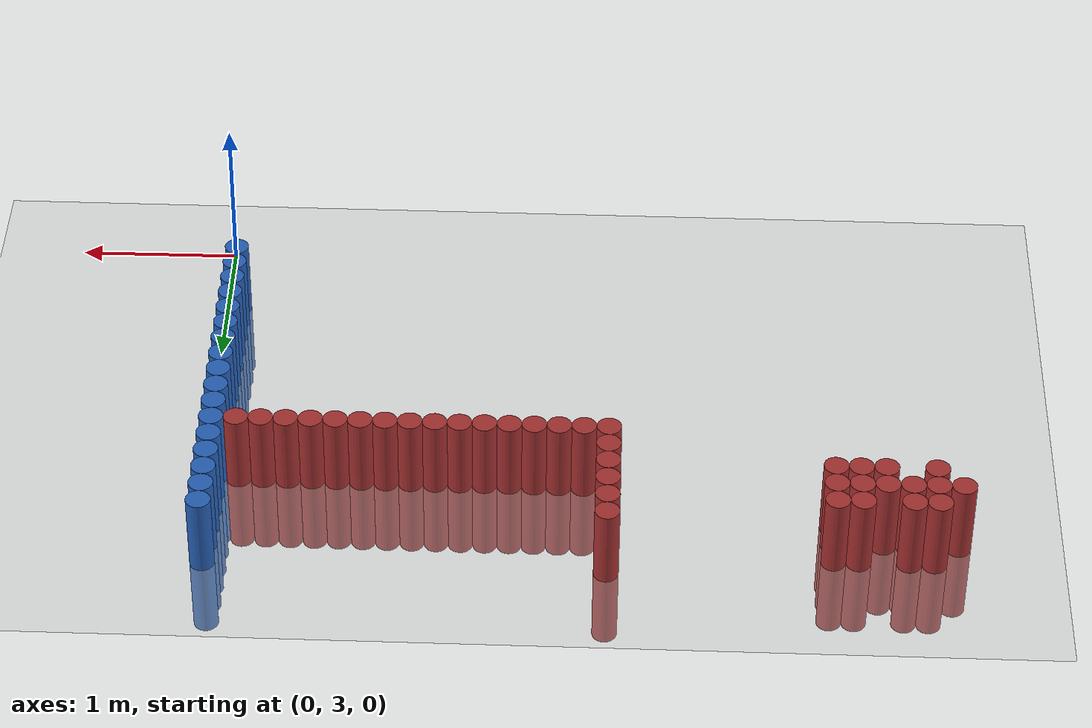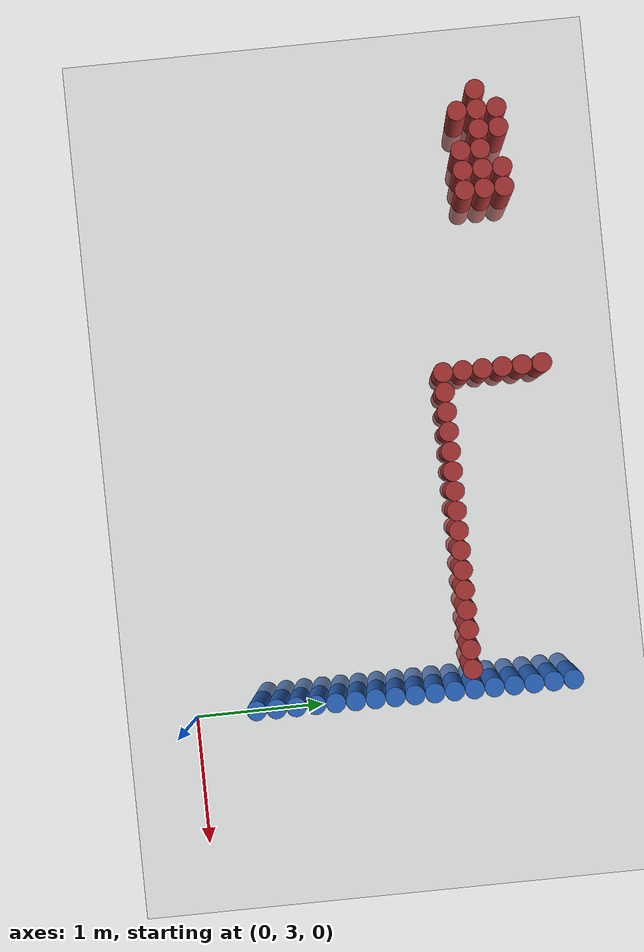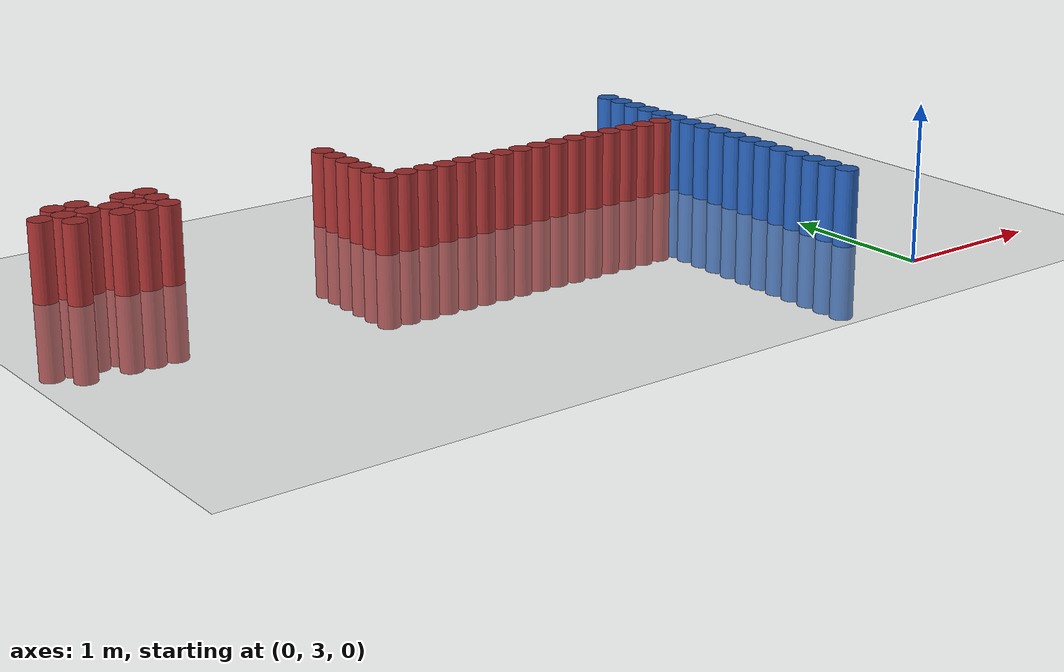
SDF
<sdf version="1.6">
 <world name="default">
  <model name="ground_plane">
   <static>1</static>
   <link name="link">
    <collision name="collision">
     <geometry><plane><normal>0 0 1</normal><size>100 100</size></plane></geometry>
     <surface><friction><ode><mu>100</mu><mu2>50</mu2></ode></friction></surface>
    </collision>
    <visual name="visual">
     <cast_shadows>0</cast_shadows>
     <geometry><plane><normal>0 0 1</normal><size>100 100</size></plane></geometry>
     <material>
      <script><uri>file://media/materials/scripts/gazebo.material</uri><name>Gazebo/Grey</name></script>
     </material>
    </visual>
   </link>
  </model>
  <model name="unit_cylinder_103">
   <static>1</static>
   <pose>-0.075000 3.525000 0.000000 0.000000 0.000000 0.000000</pose>
   <link name="link">
    <inertial>
     <mass>1</mass>
     <inertia><ixx>0.145833</ixx><ixy>0</ixy><ixz>0</ixz><iyy>0.145833</iyy><iyz>0</iyz><izz>0.125</izz></inertia>
    </inertial>
    <collision name="collision">
     <geometry><cylinder><radius>0.075000</radius><length>1</length></cylinder></geometry>
    </collision>
    <visual name="visual">
     <geometry><cylinder><radius>0.075000</radius><length>1</length></cylinder></geometry>
     <material>
      <ambient>0.152000 0.379000 0.720000 1</ambient>
      <diffuse>0.152000 0.379000 0.720000 1</diffuse>
     </material>
     <material>
      <script><name>Gazebo/Grey</name><uri>file://media/materials/scripts/gazebo.material</uri></script>
     </material>
    </visual>
   </link>
  </model>
  <model name="unit_cylinder_105">
   <static>1</static>
   <pose>-0.075000 3.675000 0.000000 0.000000 0.000000 0.000000</pose>
   <link name="link">
    <inertial>
     <mass>1</mass>
     <inertia><ixx>0.145833</ixx><ixy>0</ixy><ixz>0</ixz><iyy>0.145833</iyy><iyz>0</iyz><izz>0.125</izz></inertia>
    </inertial>
    <collision name="collision">
     <geometry><cylinder><radius>0.075000</radius><length>1</length></cylinder></geometry>
    </collision>
    <visual name="visual">
     <geometry><cylinder><radius>0.075000</radius><length>1</length></cylinder></geometry>
     <material>
      <ambient>0.152000 0.379000 0.720000 1</ambient>
      <diffuse>0.152000 0.379000 0.720000 1</diffuse>
     </material>
     <material>
      <script><name>Gazebo/Grey</name><uri>file://media/materials/scripts/gazebo.material</uri></script>
     </material>
    </visual>
   </link>
  </model>
  <model name="unit_cylinder_107">
   <static>1</static>
   <pose>-0.075000 3.825000 0.000000 0.000000 0.000000 0.000000</pose>
   <link name="link">
    <inertial>
     <mass>1</mass>
     <inertia><ixx>0.145833</ixx><ixy>0</ixy><ixz>0</ixz><iyy>0.145833</iyy><iyz>0</iyz><izz>0.125</izz></inertia>
    </inertial>
    <collision name="collision">
     <geometry><cylinder><radius>0.075000</radius><length>1</length></cylinder></geometry>
    </collision>
    <visual name="visual">
     <geometry><cylinder><radius>0.075000</radius><length>1</length></cylinder></geometry>
     <material>
      <ambient>0.152000 0.379000 0.720000 1</ambient>
      <diffuse>0.152000 0.379000 0.720000 1</diffuse>
     </material>
     <material>
      <script><name>Gazebo/Grey</name><uri>file://media/materials/scripts/gazebo.material</uri></script>
     </material>
    </visual>
   </link>
  </model>
  <model name="unit_cylinder_109">
   <static>1</static>
   <pose>-0.075000 3.975000 0.000000 0.000000 0.000000 0.000000</pose>
   <link name="link">
    <inertial>
     <mass>1</mass>
     <inertia><ixx>0.145833</ixx><ixy>0</ixy><ixz>0</ixz><iyy>0.145833</iyy><iyz>0</iyz><izz>0.125</izz></inertia>
    </inertial>
    <collision name="collision">
     <geometry><cylinder><radius>0.075000</radius><length>1</length></cylinder></geometry>
    </collision>
    <visual name="visual">
     <geometry><cylinder><radius>0.075000</radius><length>1</length></cylinder></geometry>
     <material>
      <ambient>0.152000 0.379000 0.720000 1</ambient>
      <diffuse>0.152000 0.379000 0.720000 1</diffuse>
     </material>
     <material>
      <script><name>Gazebo/Grey</name><uri>file://media/materials/scripts/gazebo.material</uri></script>
     </material>
    </visual>
   </link>
  </model>
  <model name="unit_cylinder_111">
   <static>1</static>
   <pose>-0.075000 4.125000 0.000000 0.000000 0.000000 0.000000</pose>
   <link name="link">
    <inertial>
     <mass>1</mass>
     <inertia><ixx>0.145833</ixx><ixy>0</ixy><ixz>0</ixz><iyy>0.145833</iyy><iyz>0</iyz><izz>0.125</izz></inertia>
    </inertial>
    <collision name="collision">
     <geometry><cylinder><radius>0.075000</radius><length>1</length></cylinder></geometry>
    </collision>
    <visual name="visual">
     <geometry><cylinder><radius>0.075000</radius><length>1</length></cylinder></geometry>
     <material>
      <ambient>0.152000 0.379000 0.720000 1</ambient>
      <diffuse>0.152000 0.379000 0.720000 1</diffuse>
     </material>
     <material>
      <script><name>Gazebo/Grey</name><uri>file://media/materials/scripts/gazebo.material</uri></script>
     </material>
    </visual>
   </link>
  </model>
  <model name="unit_cylinder_113">
   <static>1</static>
   <pose>-0.075000 4.275000 0.000000 0.000000 0.000000 0.000000</pose>
   <link name="link">
    <inertial>
     <mass>1</mass>
     <inertia><ixx>0.145833</ixx><ixy>0</ixy><ixz>0</ixz><iyy>0.145833</iyy><iyz>0</iyz><izz>0.125</izz></inertia>
    </inertial>
    <collision name="collision">
     <geometry><cylinder><radius>0.075000</radius><length>1</length></cylinder></geometry>
    </collision>
    <visual name="visual">
     <geometry><cylinder><radius>0.075000</radius><length>1</length></cylinder></geometry>
     <material>
      <ambient>0.152000 0.379000 0.720000 1</ambient>
      <diffuse>0.152000 0.379000 0.720000 1</diffuse>
     </material>
     <material>
      <script><name>Gazebo/Grey</name><uri>file://media/materials/scripts/gazebo.material</uri></script>
     </material>
    </visual>
   </link>
  </model>
  <model name="unit_cylinder_115">
   <static>1</static>
   <pose>-0.075000 4.425000 0.000000 0.000000 0.000000 0.000000</pose>
   <link name="link">
    <inertial>
     <mass>1</mass>
     <inertia><ixx>0.145833</ixx><ixy>0</ixy><ixz>0</ixz><iyy>0.145833</iyy><iyz>0</iyz><izz>0.125</izz></inertia>
    </inertial>
    <collision name="collision">
     <geometry><cylinder><radius>0.075000</radius><length>1</length></cylinder></geometry>
    </collision>
    <visual name="visual">
     <geometry><cylinder><radius>0.075000</radius><length>1</length></cylinder></geometry>
     <material>
      <ambient>0.152000 0.379000 0.720000 1</ambient>
      <diffuse>0.152000 0.379000 0.720000 1</diffuse>
     </material>
     <material>
      <script><name>Gazebo/Grey</name><uri>file://media/materials/scripts/gazebo.material</uri></script>
     </material>
    </visual>
   </link>
  </model>
  <model name="unit_cylinder_117">
   <static>1</static>
   <pose>-0.075000 4.575000 0.000000 0.000000 0.000000 0.000000</pose>
   <link name="link">
    <inertial>
     <mass>1</mass>
     <inertia><ixx>0.145833</ixx><ixy>0</ixy><ixz>0</ixz><iyy>0.145833</iyy><iyz>0</iyz><izz>0.125</izz></inertia>
    </inertial>
    <collision name="collision">
     <geometry><cylinder><radius>0.075000</radius><length>1</length></cylinder></geometry>
    </collision>
    <visual name="visual">
     <geometry><cylinder><radius>0.075000</radius><length>1</length></cylinder></geometry>
     <material>
      <ambient>0.152000 0.379000 0.720000 1</ambient>
      <diffuse>0.152000 0.379000 0.720000 1</diffuse>
     </material>
     <material>
      <script><name>Gazebo/Grey</name><uri>file://media/materials/scripts/gazebo.material</uri></script>
     </material>
    </visual>
   </link>
  </model>
  <model name="unit_cylinder_119">
   <static>1</static>
   <pose>-0.075000 4.725000 0.000000 0.000000 0.000000 0.000000</pose>
   <link name="link">
    <inertial>
     <mass>1</mass>
     <inertia><ixx>0.145833</ixx><ixy>0</ixy><ixz>0</ixz><iyy>0.145833</iyy><iyz>0</iyz><izz>0.125</izz></inertia>
    </inertial>
    <collision name="collision">
     <geometry><cylinder><radius>0.075000</radius><length>1</length></cylinder></geometry>
    </collision>
    <visual name="visual">
     <geometry><cylinder><radius>0.075000</radius><length>1</length></cylinder></geometry>
     <material>
      <ambient>0.152000 0.379000 0.720000 1</ambient>
      <diffuse>0.152000 0.379000 0.720000 1</diffuse>
     </material>
     <material>
      <script><name>Gazebo/Grey</name><uri>file://media/materials/scripts/gazebo.material</uri></script>
     </material>
    </visual>
   </link>
  </model>
  <model name="unit_cylinder_121">
   <static>1</static>
   <pose>-0.075000 4.875000 0.000000 0.000000 0.000000 0.000000</pose>
   <link name="link">
    <inertial>
     <mass>1</mass>
     <inertia><ixx>0.145833</ixx><ixy>0</ixy><ixz>0</ixz><iyy>0.145833</iyy><iyz>0</iyz><izz>0.125</izz></inertia>
    </inertial>
    <collision name="collision">
     <geometry><cylinder><radius>0.075000</radius><length>1</length></cylinder></geometry>
    </collision>
    <visual name="visual">
     <geometry><cylinder><radius>0.075000</radius><length>1</length></cylinder></geometry>
     <material>
      <ambient>0.152000 0.379000 0.720000 1</ambient>
      <diffuse>0.152000 0.379000 0.720000 1</diffuse>
     </material>
     <material>
      <script><name>Gazebo/Grey</name><uri>file://media/materials/scripts/gazebo.material</uri></script>
     </material>
    </visual>
   </link>
  </model>
  <model name="unit_cylinder_123">
   <static>1</static>
   <pose>-0.075000 5.025000 0.000000 0.000000 0.000000 0.000000</pose>
   <link name="link">
    <inertial>
     <mass>1</mass>
     <inertia><ixx>0.145833</ixx><ixy>0</ixy><ixz>0</ixz><iyy>0.145833</iyy><iyz>0</iyz><izz>0.125</izz></inertia>
    </inertial>
    <collision name="collision">
     <geometry><cylinder><radius>0.075000</radius><length>1</length></cylinder></geometry>
    </collision>
    <visual name="visual">
     <geometry><cylinder><radius>0.075000</radius><length>1</length></cylinder></geometry>
     <material>
      <ambient>0.152000 0.379000 0.720000 1</ambient>
      <diffuse>0.152000 0.379000 0.720000 1</diffuse>
     </material>
     <material>
      <script><name>Gazebo/Grey</name><uri>file://media/materials/scripts/gazebo.material</uri></script>
     </material>
    </visual>
   </link>
  </model>
  <model name="unit_cylinder_298">
   <static>1</static>
   <pose>-4.575000 5.625000 0.000000 0.000000 0.000000 0.000000</pose>
   <link name="link">
    <inertial>
     <mass>1</mass>
     <inertia><ixx>0.145833</ixx><ixy>0</ixy><ixz>0</ixz><iyy>0.145833</iyy><iyz>0</iyz><izz>0.125</izz></inertia>
    </inertial>
    <collision name="collision">
     <geometry><cylinder><radius>0.075000</radius><length>1</length></cylinder></geometry>
    </collision>
    <visual name="visual">
     <geometry><cylinder><radius>0.075000</radius><length>1</length></cylinder></geometry>
     <material>
      <ambient>0.648000 0.192000 0.192000 1</ambient>
      <diffuse>0.648000 0.192000 0.192000 1</diffuse>
     </material>
     <material>
      <script><name>Gazebo/Grey</name><uri>file://media/materials/scripts/gazebo.material</uri></script>
     </material>
    </visual>
   </link>
  </model>
  <model name="unit_cylinder_299">
   <static>1</static>
   <pose>-4.425000 5.475000 0.000000 0.000000 0.000000 0.000000</pose>
   <link name="link">
    <inertial>
     <mass>1</mass>
     <inertia><ixx>0.145833</ixx><ixy>0</ixy><ixz>0</ixz><iyy>0.145833</iyy><iyz>0</iyz><izz>0.125</izz></inertia>
    </inertial>
    <collision name="collision">
     <geometry><cylinder><radius>0.075000</radius><length>1</length></cylinder></geometry>
    </collision>
    <visual name="visual">
     <geometry><cylinder><radius>0.075000</radius><length>1</length></cylinder></geometry>
     <material>
      <ambient>0.648000 0.192000 0.192000 1</ambient>
      <diffuse>0.648000 0.192000 0.192000 1</diffuse>
     </material>
     <material>
      <script><name>Gazebo/Grey</name><uri>file://media/materials/scripts/gazebo.material</uri></script>
     </material>
    </visual>
   </link>
  </model>
  <model name="unit_cylinder_300">
   <static>1</static>
   <pose>-4.425000 5.625000 0.000000 0.000000 0.000000 0.000000</pose>
   <link name="link">
    <inertial>
     <mass>1</mass>
     <inertia><ixx>0.145833</ixx><ixy>0</ixy><ixz>0</ixz><iyy>0.145833</iyy><iyz>0</iyz><izz>0.125</izz></inertia>
    </inertial>
    <collision name="collision">
     <geometry><cylinder><radius>0.075000</radius><length>1</length></cylinder></geometry>
    </collision>
    <visual name="visual">
     <geometry><cylinder><radius>0.075000</radius><length>1</length></cylinder></geometry>
     <material>
      <ambient>0.648000 0.192000 0.192000 1</ambient>
      <diffuse>0.648000 0.192000 0.192000 1</diffuse>
     </material>
     <material>
      <script><name>Gazebo/Grey</name><uri>file://media/materials/scripts/gazebo.material</uri></script>
     </material>
    </visual>
   </link>
  </model>
  <model name="unit_cylinder_301">
   <static>1</static>
   <pose>-4.425000 5.775000 0.000000 0.000000 0.000000 0.000000</pose>
   <link name="link">
    <inertial>
     <mass>1</mass>
     <inertia><ixx>0.145833</ixx><ixy>0</ixy><ixz>0</ixz><iyy>0.145833</iyy><iyz>0</iyz><izz>0.125</izz></inertia>
    </inertial>
    <collision name="collision">
     <geometry><cylinder><radius>0.075000</radius><length>1</length></cylinder></geometry>
    </collision>
    <visual name="visual">
     <geometry><cylinder><radius>0.075000</radius><length>1</length></cylinder></geometry>
     <material>
      <ambient>0.648000 0.192000 0.192000 1</ambient>
      <diffuse>0.648000 0.192000 0.192000 1</diffuse>
     </material>
     <material>
      <script><name>Gazebo/Grey</name><uri>file://media/materials/scripts/gazebo.material</uri></script>
     </material>
    </visual>
   </link>
  </model>
  <model name="unit_cylinder_302">
   <static>1</static>
   <pose>-4.275000 5.625000 0.000000 0.000000 0.000000 0.000000</pose>
   <link name="link">
    <inertial>
     <mass>1</mass>
     <inertia><ixx>0.145833</ixx><ixy>0</ixy><ixz>0</ixz><iyy>0.145833</iyy><iyz>0</iyz><izz>0.125</izz></inertia>
    </inertial>
    <collision name="collision">
     <geometry><cylinder><radius>0.075000</radius><length>1</length></cylinder></geometry>
    </collision>
    <visual name="visual">
     <geometry><cylinder><radius>0.075000</radius><length>1</length></cylinder></geometry>
     <material>
      <ambient>0.648000 0.192000 0.192000 1</ambient>
      <diffuse>0.648000 0.192000 0.192000 1</diffuse>
     </material>
     <material>
      <script><name>Gazebo/Grey</name><uri>file://media/materials/scripts/gazebo.material</uri></script>
     </material>
    </visual>
   </link>
  </model>
  <model name="unit_cylinder_303">
   <static>1</static>
   <pose>-4.275000 5.775000 0.000000 0.000000 0.000000 0.000000</pose>
   <link name="link">
    <inertial>
     <mass>1</mass>
     <inertia><ixx>0.145833</ixx><ixy>0</ixy><ixz>0</ixz><iyy>0.145833</iyy><iyz>0</iyz><izz>0.125</izz></inertia>
    </inertial>
    <collision name="collision">
     <geometry><cylinder><radius>0.075000</radius><length>1</length></cylinder></geometry>
    </collision>
    <visual name="visual">
     <geometry><cylinder><radius>0.075000</radius><length>1</length></cylinder></geometry>
     <material>
      <ambient>0.648000 0.192000 0.192000 1</ambient>
      <diffuse>0.648000 0.192000 0.192000 1</diffuse>
     </material>
     <material>
      <script><name>Gazebo/Grey</name><uri>file://media/materials/scripts/gazebo.material</uri></script>
     </material>
    </visual>
   </link>
  </model>
  <model name="unit_cylinder_304">
   <static>1</static>
   <pose>-4.125000 5.475000 0.000000 0.000000 0.000000 0.000000</pose>
   <link name="link">
    <inertial>
     <mass>1</mass>
     <inertia><ixx>0.145833</ixx><ixy>0</ixy><ixz>0</ixz><iyy>0.145833</iyy><iyz>0</iyz><izz>0.125</izz></inertia>
    </inertial>
    <collision name="collision">
     <geometry><cylinder><radius>0.075000</radius><length>1</length></cylinder></geometry>
    </collision>
    <visual name="visual">
     <geometry><cylinder><radius>0.075000</radius><length>1</length></cylinder></geometry>
     <material>
      <ambient>0.648000 0.192000 0.192000 1</ambient>
      <diffuse>0.648000 0.192000 0.192000 1</diffuse>
     </material>
     <material>
      <script><name>Gazebo/Grey</name><uri>file://media/materials/scripts/gazebo.material</uri></script>
     </material>
    </visual>
   </link>
  </model>
  <model name="unit_cylinder_305">
   <static>1</static>
   <pose>-4.125000 5.625000 0.000000 0.000000 0.000000 0.000000</pose>
   <link name="link">
    <inertial>
     <mass>1</mass>
     <inertia><ixx>0.145833</ixx><ixy>0</ixy><ixz>0</ixz><iyy>0.145833</iyy><iyz>0</iyz><izz>0.125</izz></inertia>
    </inertial>
    <collision name="collision">
     <geometry><cylinder><radius>0.075000</radius><length>1</length></cylinder></geometry>
    </collision>
    <visual name="visual">
     <geometry><cylinder><radius>0.075000</radius><length>1</length></cylinder></geometry>
     <material>
      <ambient>0.648000 0.192000 0.192000 1</ambient>
      <diffuse>0.648000 0.192000 0.192000 1</diffuse>
     </material>
     <material>
      <script><name>Gazebo/Grey</name><uri>file://media/materials/scripts/gazebo.material</uri></script>
     </material>
    </visual>
   </link>
  </model>
  <model name="unit_cylinder_306">
   <static>1</static>
   <pose>-3.975000 5.475000 0.000000 0.000000 0.000000 0.000000</pose>
   <link name="link">
    <inertial>
     <mass>1</mass>
     <inertia><ixx>0.145833</ixx><ixy>0</ixy><ixz>0</ixz><iyy>0.145833</iyy><iyz>0</iyz><izz>0.125</izz></inertia>
    </inertial>
    <collision name="collision">
     <geometry><cylinder><radius>0.075000</radius><length>1</length></cylinder></geometry>
    </collision>
    <visual name="visual">
     <geometry><cylinder><radius>0.075000</radius><length>1</length></cylinder></geometry>
     <material>
      <ambient>0.648000 0.192000 0.192000 1</ambient>
      <diffuse>0.648000 0.192000 0.192000 1</diffuse>
     </material>
     <material>
      <script><name>Gazebo/Grey</name><uri>file://media/materials/scripts/gazebo.material</uri></script>
     </material>
    </visual>
   </link>
  </model>
  <model name="unit_cylinder_307">
   <static>1</static>
   <pose>-3.975000 5.625000 0.000000 0.000000 0.000000 0.000000</pose>
   <link name="link">
    <inertial>
     <mass>1</mass>
     <inertia><ixx>0.145833</ixx><ixy>0</ixy><ixz>0</ixz><iyy>0.145833</iyy><iyz>0</iyz><izz>0.125</izz></inertia>
    </inertial>
    <collision name="collision">
     <geometry><cylinder><radius>0.075000</radius><length>1</length></cylinder></geometry>
    </collision>
    <visual name="visual">
     <geometry><cylinder><radius>0.075000</radius><length>1</length></cylinder></geometry>
     <material>
      <ambient>0.648000 0.192000 0.192000 1</ambient>
      <diffuse>0.648000 0.192000 0.192000 1</diffuse>
     </material>
     <material>
      <script><name>Gazebo/Grey</name><uri>file://media/materials/scripts/gazebo.material</uri></script>
     </material>
    </visual>
   </link>
  </model>
  <model name="unit_cylinder_308">
   <static>1</static>
   <pose>-3.975000 5.775000 0.000000 0.000000 0.000000 0.000000</pose>
   <link name="link">
    <inertial>
     <mass>1</mass>
     <inertia><ixx>0.145833</ixx><ixy>0</ixy><ixz>0</ixz><iyy>0.145833</iyy><iyz>0</iyz><izz>0.125</izz></inertia>
    </inertial>
    <collision name="collision">
     <geometry><cylinder><radius>0.075000</radius><length>1</length></cylinder></geometry>
    </collision>
    <visual name="visual">
     <geometry><cylinder><radius>0.075000</radius><length>1</length></cylinder></geometry>
     <material>
      <ambient>0.648000 0.192000 0.192000 1</ambient>
      <diffuse>0.648000 0.192000 0.192000 1</diffuse>
     </material>
     <material>
      <script><name>Gazebo/Grey</name><uri>file://media/materials/scripts/gazebo.material</uri></script>
     </material>
    </visual>
   </link>
  </model>
  <model name="unit_cylinder_309">
   <static>1</static>
   <pose>-3.825000 5.475000 0.000000 0.000000 0.000000 0.000000</pose>
   <link name="link">
    <inertial>
     <mass>1</mass>
     <inertia><ixx>0.145833</ixx><ixy>0</ixy><ixz>0</ixz><iyy>0.145833</iyy><iyz>0</iyz><izz>0.125</izz></inertia>
    </inertial>
    <collision name="collision">
     <geometry><cylinder><radius>0.075000</radius><length>1</length></cylinder></geometry>
    </collision>
    <visual name="visual">
     <geometry><cylinder><radius>0.075000</radius><length>1</length></cylinder></geometry>
     <material>
      <ambient>0.648000 0.192000 0.192000 1</ambient>
      <diffuse>0.648000 0.192000 0.192000 1</diffuse>
     </material>
     <material>
      <script><name>Gazebo/Grey</name><uri>file://media/materials/scripts/gazebo.material</uri></script>
     </material>
    </visual>
   </link>
  </model>
  <model name="unit_cylinder_310">
   <static>1</static>
   <pose>-3.825000 5.625000 0.000000 0.000000 0.000000 0.000000</pose>
   <link name="link">
    <inertial>
     <mass>1</mass>
     <inertia><ixx>0.145833</ixx><ixy>0</ixy><ixz>0</ixz><iyy>0.145833</iyy><iyz>0</iyz><izz>0.125</izz></inertia>
    </inertial>
    <collision name="collision">
     <geometry><cylinder><radius>0.075000</radius><length>1</length></cylinder></geometry>
    </collision>
    <visual name="visual">
     <geometry><cylinder><radius>0.075000</radius><length>1</length></cylinder></geometry>
     <material>
      <ambient>0.648000 0.192000 0.192000 1</ambient>
      <diffuse>0.648000 0.192000 0.192000 1</diffuse>
     </material>
     <material>
      <script><name>Gazebo/Grey</name><uri>file://media/materials/scripts/gazebo.material</uri></script>
     </material>
    </visual>
   </link>
  </model>
  <model name="unit_cylinder_311">
   <static>1</static>
   <pose>-3.825000 5.775000 0.000000 0.000000 0.000000 0.000000</pose>
   <link name="link">
    <inertial>
     <mass>1</mass>
     <inertia><ixx>0.145833</ixx><ixy>0</ixy><ixz>0</ixz><iyy>0.145833</iyy><iyz>0</iyz><izz>0.125</izz></inertia>
    </inertial>
    <collision name="collision">
     <geometry><cylinder><radius>0.075000</radius><length>1</length></cylinder></geometry>
    </collision>
    <visual name="visual">
     <geometry><cylinder><radius>0.075000</radius><length>1</length></cylinder></geometry>
     <material>
      <ambient>0.648000 0.192000 0.192000 1</ambient>
      <diffuse>0.648000 0.192000 0.192000 1</diffuse>
     </material>
     <material>
      <script><name>Gazebo/Grey</name><uri>file://media/materials/scripts/gazebo.material</uri></script>
     </material>
    </visual>
   </link>
  </model>
  <model name="unit_cylinder_339">
   <static>1</static>
   <pose>-2.475000 5.175000 0.000000 0.000000 0.000000 0.000000</pose>
   <link name="link">
    <inertial>
     <mass>1</mass>
     <inertia><ixx>0.145833</ixx><ixy>0</ixy><ixz>0</ixz><iyy>0.145833</iyy><iyz>0</iyz><izz>0.125</izz></inertia>
    </inertial>
    <collision name="collision">
     <geometry><cylinder><radius>0.075000</radius><length>1</length></cylinder></geometry>
    </collision>
    <visual name="visual">
     <geometry><cylinder><radius>0.075000</radius><length>1</length></cylinder></geometry>
     <material>
      <ambient>0.648000 0.192000 0.192000 1</ambient>
      <diffuse>0.648000 0.192000 0.192000 1</diffuse>
     </material>
     <material>
      <script><name>Gazebo/Grey</name><uri>file://media/materials/scripts/gazebo.material</uri></script>
     </material>
    </visual>
   </link>
  </model>
  <model name="unit_cylinder_340">
   <static>1</static>
   <pose>-2.475000 5.325000 0.000000 0.000000 0.000000 0.000000</pose>
   <link name="link">
    <inertial>
     <mass>1</mass>
     <inertia><ixx>0.145833</ixx><ixy>0</ixy><ixz>0</ixz><iyy>0.145833</iyy><iyz>0</iyz><izz>0.125</izz></inertia>
    </inertial>
    <collision name="collision">
     <geometry><cylinder><radius>0.075000</radius><length>1</length></cylinder></geometry>
    </collision>
    <visual name="visual">
     <geometry><cylinder><radius>0.075000</radius><length>1</length></cylinder></geometry>
     <material>
      <ambient>0.648000 0.192000 0.192000 1</ambient>
      <diffuse>0.648000 0.192000 0.192000 1</diffuse>
     </material>
     <material>
      <script><name>Gazebo/Grey</name><uri>file://media/materials/scripts/gazebo.material</uri></script>
     </material>
    </visual>
   </link>
  </model>
  <model name="unit_cylinder_341">
   <static>1</static>
   <pose>-2.475000 5.475000 0.000000 0.000000 0.000000 0.000000</pose>
   <link name="link">
    <inertial>
     <mass>1</mass>
     <inertia><ixx>0.145833</ixx><ixy>0</ixy><ixz>0</ixz><iyy>0.145833</iyy><iyz>0</iyz><izz>0.125</izz></inertia>
    </inertial>
    <collision name="collision">
     <geometry><cylinder><radius>0.075000</radius><length>1</length></cylinder></geometry>
    </collision>
    <visual name="visual">
     <geometry><cylinder><radius>0.075000</radius><length>1</length></cylinder></geometry>
     <material>
      <ambient>0.648000 0.192000 0.192000 1</ambient>
      <diffuse>0.648000 0.192000 0.192000 1</diffuse>
     </material>
     <material>
      <script><name>Gazebo/Grey</name><uri>file://media/materials/scripts/gazebo.material</uri></script>
     </material>
    </visual>
   </link>
  </model>
  <model name="unit_cylinder_342">
   <static>1</static>
   <pose>-2.475000 5.625000 0.000000 0.000000 0.000000 0.000000</pose>
   <link name="link">
    <inertial>
     <mass>1</mass>
     <inertia><ixx>0.145833</ixx><ixy>0</ixy><ixz>0</ixz><iyy>0.145833</iyy><iyz>0</iyz><izz>0.125</izz></inertia>
    </inertial>
    <collision name="collision">
     <geometry><cylinder><radius>0.075000</radius><length>1</length></cylinder></geometry>
    </collision>
    <visual name="visual">
     <geometry><cylinder><radius>0.075000</radius><length>1</length></cylinder></geometry>
     <material>
      <ambient>0.648000 0.192000 0.192000 1</ambient>
      <diffuse>0.648000 0.192000 0.192000 1</diffuse>
     </material>
     <material>
      <script><name>Gazebo/Grey</name><uri>file://media/materials/scripts/gazebo.material</uri></script>
     </material>
    </visual>
   </link>
  </model>
  <model name="unit_cylinder_343">
   <static>1</static>
   <pose>-2.475000 5.775000 0.000000 0.000000 0.000000 0.000000</pose>
   <link name="link">
    <inertial>
     <mass>1</mass>
     <inertia><ixx>0.145833</ixx><ixy>0</ixy><ixz>0</ixz><iyy>0.145833</iyy><iyz>0</iyz><izz>0.125</izz></inertia>
    </inertial>
    <collision name="collision">
     <geometry><cylinder><radius>0.075000</radius><length>1</length></cylinder></geometry>
    </collision>
    <visual name="visual">
     <geometry><cylinder><radius>0.075000</radius><length>1</length></cylinder></geometry>
     <material>
      <ambient>0.648000 0.192000 0.192000 1</ambient>
      <diffuse>0.648000 0.192000 0.192000 1</diffuse>
     </material>
     <material>
      <script><name>Gazebo/Grey</name><uri>file://media/materials/scripts/gazebo.material</uri></script>
     </material>
    </visual>
   </link>
  </model>
  <model name="unit_cylinder_344">
   <static>1</static>
   <pose>-2.475000 5.925000 0.000000 0.000000 0.000000 0.000000</pose>
   <link name="link">
    <inertial>
     <mass>1</mass>
     <inertia><ixx>0.145833</ixx><ixy>0</ixy><ixz>0</ixz><iyy>0.145833</iyy><iyz>0</iyz><izz>0.125</izz></inertia>
    </inertial>
    <collision name="collision">
     <geometry><cylinder><radius>0.075000</radius><length>1</length></cylinder></geometry>
    </collision>
    <visual name="visual">
     <geometry><cylinder><radius>0.075000</radius><length>1</length></cylinder></geometry>
     <material>
      <ambient>0.648000 0.192000 0.192000 1</ambient>
      <diffuse>0.648000 0.192000 0.192000 1</diffuse>
     </material>
     <material>
      <script><name>Gazebo/Grey</name><uri>file://media/materials/scripts/gazebo.material</uri></script>
     </material>
    </visual>
   </link>
  </model>
  <model name="unit_cylinder_354">
   <static>1</static>
   <pose>-2.325000 5.175000 0.000000 0.000000 0.000000 0.000000</pose>
   <link name="link">
    <inertial>
     <mass>1</mass>
     <inertia><ixx>0.145833</ixx><ixy>0</ixy><ixz>0</ixz><iyy>0.145833</iyy><iyz>0</iyz><izz>0.125</izz></inertia>
    </inertial>
    <collision name="collision">
     <geometry><cylinder><radius>0.075000</radius><length>1</length></cylinder></geometry>
    </collision>
    <visual name="visual">
     <geometry><cylinder><radius>0.075000</radius><length>1</length></cylinder></geometry>
     <material>
      <ambient>0.648000 0.192000 0.192000 1</ambient>
      <diffuse>0.648000 0.192000 0.192000 1</diffuse>
     </material>
     <material>
      <script><name>Gazebo/Grey</name><uri>file://media/materials/scripts/gazebo.material</uri></script>
     </material>
    </visual>
   </link>
  </model>
  <model name="unit_cylinder_356">
   <static>1</static>
   <pose>-2.175000 5.175000 0.000000 0.000000 0.000000 0.000000</pose>
   <link name="link">
    <inertial>
     <mass>1</mass>
     <inertia><ixx>0.145833</ixx><ixy>0</ixy><ixz>0</ixz><iyy>0.145833</iyy><iyz>0</iyz><izz>0.125</izz></inertia>
    </inertial>
    <collision name="collision">
     <geometry><cylinder><radius>0.075000</radius><length>1</length></cylinder></geometry>
    </collision>
    <visual name="visual">
     <geometry><cylinder><radius>0.075000</radius><length>1</length></cylinder></geometry>
     <material>
      <ambient>0.648000 0.192000 0.192000 1</ambient>
      <diffuse>0.648000 0.192000 0.192000 1</diffuse>
     </material>
     <material>
      <script><name>Gazebo/Grey</name><uri>file://media/materials/scripts/gazebo.material</uri></script>
     </material>
    </visual>
   </link>
  </model>
  <model name="unit_cylinder_358">
   <static>1</static>
   <pose>-2.025000 5.175000 0.000000 0.000000 0.000000 0.000000</pose>
   <link name="link">
    <inertial>
     <mass>1</mass>
     <inertia><ixx>0.145833</ixx><ixy>0</ixy><ixz>0</ixz><iyy>0.145833</iyy><iyz>0</iyz><izz>0.125</izz></inertia>
    </inertial>
    <collision name="collision">
     <geometry><cylinder><radius>0.075000</radius><length>1</length></cylinder></geometry>
    </collision>
    <visual name="visual">
     <geometry><cylinder><radius>0.075000</radius><length>1</length></cylinder></geometry>
     <material>
      <ambient>0.648000 0.192000 0.192000 1</ambient>
      <diffuse>0.648000 0.192000 0.192000 1</diffuse>
     </material>
     <material>
      <script><name>Gazebo/Grey</name><uri>file://media/materials/scripts/gazebo.material</uri></script>
     </material>
    </visual>
   </link>
  </model>
  <model name="unit_cylinder_360">
   <static>1</static>
   <pose>-1.875000 5.175000 0.000000 0.000000 0.000000 0.000000</pose>
   <link name="link">
    <inertial>
     <mass>1</mass>
     <inertia><ixx>0.145833</ixx><ixy>0</ixy><ixz>0</ixz><iyy>0.145833</iyy><iyz>0</iyz><izz>0.125</izz></inertia>
    </inertial>
    <collision name="collision">
     <geometry><cylinder><radius>0.075000</radius><length>1</length></cylinder></geometry>
    </collision>
    <visual name="visual">
     <geometry><cylinder><radius>0.075000</radius><length>1</length></cylinder></geometry>
     <material>
      <ambient>0.648000 0.192000 0.192000 1</ambient>
      <diffuse>0.648000 0.192000 0.192000 1</diffuse>
     </material>
     <material>
      <script><name>Gazebo/Grey</name><uri>file://media/materials/scripts/gazebo.material</uri></script>
     </material>
    </visual>
   </link>
  </model>
  <model name="unit_cylinder_362">
   <static>1</static>
   <pose>-1.725000 5.175000 0.000000 0.000000 0.000000 0.000000</pose>
   <link name="link">
    <inertial>
     <mass>1</mass>
     <inertia><ixx>0.145833</ixx><ixy>0</ixy><ixz>0</ixz><iyy>0.145833</iyy><iyz>0</iyz><izz>0.125</izz></inertia>
    </inertial>
    <collision name="collision">
     <geometry><cylinder><radius>0.075000</radius><length>1</length></cylinder></geometry>
    </collision>
    <visual name="visual">
     <geometry><cylinder><radius>0.075000</radius><length>1</length></cylinder></geometry>
     <material>
      <ambient>0.648000 0.192000 0.192000 1</ambient>
      <diffuse>0.648000 0.192000 0.192000 1</diffuse>
     </material>
     <material>
      <script><name>Gazebo/Grey</name><uri>file://media/materials/scripts/gazebo.material</uri></script>
     </material>
    </visual>
   </link>
  </model>
  <model name="unit_cylinder_364">
   <static>1</static>
   <pose>-1.575000 5.175000 0.000000 0.000000 0.000000 0.000000</pose>
   <link name="link">
    <inertial>
     <mass>1</mass>
     <inertia><ixx>0.145833</ixx><ixy>0</ixy><ixz>0</ixz><iyy>0.145833</iyy><iyz>0</iyz><izz>0.125</izz></inertia>
    </inertial>
    <collision name="collision">
     <geometry><cylinder><radius>0.075000</radius><length>1</length></cylinder></geometry>
    </collision>
    <visual name="visual">
     <geometry><cylinder><radius>0.075000</radius><length>1</length></cylinder></geometry>
     <material>
      <ambient>0.648000 0.192000 0.192000 1</ambient>
      <diffuse>0.648000 0.192000 0.192000 1</diffuse>
     </material>
     <material>
      <script><name>Gazebo/Grey</name><uri>file://media/materials/scripts/gazebo.material</uri></script>
     </material>
    </visual>
   </link>
  </model>
  <model name="unit_cylinder_366">
   <static>1</static>
   <pose>-1.425000 5.175000 0.000000 0.000000 0.000000 0.000000</pose>
   <link name="link">
    <inertial>
     <mass>1</mass>
     <inertia><ixx>0.145833</ixx><ixy>0</ixy><ixz>0</ixz><iyy>0.145833</iyy><iyz>0</iyz><izz>0.125</izz></inertia>
    </inertial>
    <collision name="collision">
     <geometry><cylinder><radius>0.075000</radius><length>1</length></cylinder></geometry>
    </collision>
    <visual name="visual">
     <geometry><cylinder><radius>0.075000</radius><length>1</length></cylinder></geometry>
     <material>
      <ambient>0.648000 0.192000 0.192000 1</ambient>
      <diffuse>0.648000 0.192000 0.192000 1</diffuse>
     </material>
     <material>
      <script><name>Gazebo/Grey</name><uri>file://media/materials/scripts/gazebo.material</uri></script>
     </material>
    </visual>
   </link>
  </model>
  <model name="unit_cylinder_368">
   <static>1</static>
   <pose>-1.275000 5.175000 0.000000 0.000000 0.000000 0.000000</pose>
   <link name="link">
    <inertial>
     <mass>1</mass>
     <inertia><ixx>0.145833</ixx><ixy>0</ixy><ixz>0</ixz><iyy>0.145833</iyy><iyz>0</iyz><izz>0.125</izz></inertia>
    </inertial>
    <collision name="collision">
     <geometry><cylinder><radius>0.075000</radius><length>1</length></cylinder></geometry>
    </collision>
    <visual name="visual">
     <geometry><cylinder><radius>0.075000</radius><length>1</length></cylinder></geometry>
     <material>
      <ambient>0.648000 0.192000 0.192000 1</ambient>
      <diffuse>0.648000 0.192000 0.192000 1</diffuse>
     </material>
     <material>
      <script><name>Gazebo/Grey</name><uri>file://media/materials/scripts/gazebo.material</uri></script>
     </material>
    </visual>
   </link>
  </model>
  <model name="unit_cylinder_370">
   <static>1</static>
   <pose>-1.125000 5.175000 0.000000 0.000000 0.000000 0.000000</pose>
   <link name="link">
    <inertial>
     <mass>1</mass>
     <inertia><ixx>0.145833</ixx><ixy>0</ixy><ixz>0</ixz><iyy>0.145833</iyy><iyz>0</iyz><izz>0.125</izz></inertia>
    </inertial>
    <collision name="collision">
     <geometry><cylinder><radius>0.075000</radius><length>1</length></cylinder></geometry>
    </collision>
    <visual name="visual">
     <geometry><cylinder><radius>0.075000</radius><length>1</length></cylinder></geometry>
     <material>
      <ambient>0.648000 0.192000 0.192000 1</ambient>
      <diffuse>0.648000 0.192000 0.192000 1</diffuse>
     </material>
     <material>
      <script><name>Gazebo/Grey</name><uri>file://media/materials/scripts/gazebo.material</uri></script>
     </material>
    </visual>
   </link>
  </model>
  <model name="unit_cylinder_372">
   <static>1</static>
   <pose>-0.975000 5.175000 0.000000 0.000000 0.000000 0.000000</pose>
   <link name="link">
    <inertial>
     <mass>1</mass>
     <inertia><ixx>0.145833</ixx><ixy>0</ixy><ixz>0</ixz><iyy>0.145833</iyy><iyz>0</iyz><izz>0.125</izz></inertia>
    </inertial>
    <collision name="collision">
     <geometry><cylinder><radius>0.075000</radius><length>1</length></cylinder></geometry>
    </collision>
    <visual name="visual">
     <geometry><cylinder><radius>0.075000</radius><length>1</length></cylinder></geometry>
     <material>
      <ambient>0.648000 0.192000 0.192000 1</ambient>
      <diffuse>0.648000 0.192000 0.192000 1</diffuse>
     </material>
     <material>
      <script><name>Gazebo/Grey</name><uri>file://media/materials/scripts/gazebo.material</uri></script>
     </material>
    </visual>
   </link>
  </model>
  <model name="unit_cylinder_374">
   <static>1</static>
   <pose>-0.825000 5.175000 0.000000 0.000000 0.000000 0.000000</pose>
   <link name="link">
    <inertial>
     <mass>1</mass>
     <inertia><ixx>0.145833</ixx><ixy>0</ixy><ixz>0</ixz><iyy>0.145833</iyy><iyz>0</iyz><izz>0.125</izz></inertia>
    </inertial>
    <collision name="collision">
     <geometry><cylinder><radius>0.075000</radius><length>1</length></cylinder></geometry>
    </collision>
    <visual name="visual">
     <geometry><cylinder><radius>0.075000</radius><length>1</length></cylinder></geometry>
     <material>
      <ambient>0.648000 0.192000 0.192000 1</ambient>
      <diffuse>0.648000 0.192000 0.192000 1</diffuse>
     </material>
     <material>
      <script><name>Gazebo/Grey</name><uri>file://media/materials/scripts/gazebo.material</uri></script>
     </material>
    </visual>
   </link>
  </model>
  <model name="unit_cylinder_376">
   <static>1</static>
   <pose>-0.675000 5.175000 0.000000 0.000000 0.000000 0.000000</pose>
   <link name="link">
    <inertial>
     <mass>1</mass>
     <inertia><ixx>0.145833</ixx><ixy>0</ixy><ixz>0</ixz><iyy>0.145833</iyy><iyz>0</iyz><izz>0.125</izz></inertia>
    </inertial>
    <collision name="collision">
     <geometry><cylinder><radius>0.075000</radius><length>1</length></cylinder></geometry>
    </collision>
    <visual name="visual">
     <geometry><cylinder><radius>0.075000</radius><length>1</length></cylinder></geometry>
     <material>
      <ambient>0.648000 0.192000 0.192000 1</ambient>
      <diffuse>0.648000 0.192000 0.192000 1</diffuse>
     </material>
     <material>
      <script><name>Gazebo/Grey</name><uri>file://media/materials/scripts/gazebo.material</uri></script>
     </material>
    </visual>
   </link>
  </model>
  <model name="unit_cylinder_378">
   <static>1</static>
   <pose>-0.525000 5.175000 0.000000 0.000000 0.000000 0.000000</pose>
   <link name="link">
    <inertial>
     <mass>1</mass>
     <inertia><ixx>0.145833</ixx><ixy>0</ixy><ixz>0</ixz><iyy>0.145833</iyy><iyz>0</iyz><izz>0.125</izz></inertia>
    </inertial>
    <collision name="collision">
     <geometry><cylinder><radius>0.075000</radius><length>1</length></cylinder></geometry>
    </collision>
    <visual name="visual">
     <geometry><cylinder><radius>0.075000</radius><length>1</length></cylinder></geometry>
     <material>
      <ambient>0.648000 0.192000 0.192000 1</ambient>
      <diffuse>0.648000 0.192000 0.192000 1</diffuse>
     </material>
     <material>
      <script><name>Gazebo/Grey</name><uri>file://media/materials/scripts/gazebo.material</uri></script>
     </material>
    </visual>
   </link>
  </model>
  <model name="unit_cylinder_380">
   <static>1</static>
   <pose>-0.375000 5.175000 0.000000 0.000000 0.000000 0.000000</pose>
   <link name="link">
    <inertial>
     <mass>1</mass>
     <inertia><ixx>0.145833</ixx><ixy>0</ixy><ixz>0</ixz><iyy>0.145833</iyy><iyz>0</iyz><izz>0.125</izz></inertia>
    </inertial>
    <collision name="collision">
     <geometry><cylinder><radius>0.075000</radius><length>1</length></cylinder></geometry>
    </collision>
    <visual name="visual">
     <geometry><cylinder><radius>0.075000</radius><length>1</length></cylinder></geometry>
     <material>
      <ambient>0.648000 0.192000 0.192000 1</ambient>
      <diffuse>0.648000 0.192000 0.192000 1</diffuse>
     </material>
     <material>
      <script><name>Gazebo/Grey</name><uri>file://media/materials/scripts/gazebo.material</uri></script>
     </material>
    </visual>
   </link>
  </model>
  <model name="unit_cylinder_382">
   <static>1</static>
   <pose>-0.225000 5.175000 0.000000 0.000000 0.000000 0.000000</pose>
   <link name="link">
    <inertial>
     <mass>1</mass>
     <inertia><ixx>0.145833</ixx><ixy>0</ixy><ixz>0</ixz><iyy>0.145833</iyy><iyz>0</iyz><izz>0.125</izz></inertia>
    </inertial>
    <collision name="collision">
     <geometry><cylinder><radius>0.075000</radius><length>1</length></cylinder></geometry>
    </collision>
    <visual name="visual">
     <geometry><cylinder><radius>0.075000</radius><length>1</length></cylinder></geometry>
     <material>
      <ambient>0.648000 0.192000 0.192000 1</ambient>
      <diffuse>0.648000 0.192000 0.192000 1</diffuse>
     </material>
     <material>
      <script><name>Gazebo/Grey</name><uri>file://media/materials/scripts/gazebo.material</uri></script>
     </material>
    </visual>
   </link>
  </model>
  <model name="unit_cylinder_384">
   <static>1</static>
   <pose>-0.075000 5.175000 0.000000 0.000000 0.000000 0.000000</pose>
   <link name="link">
    <inertial>
     <mass>1</mass>
     <inertia><ixx>0.145833</ixx><ixy>0</ixy><ixz>0</ixz><iyy>0.145833</iyy><iyz>0</iyz><izz>0.125</izz></inertia>
    </inertial>
    <collision name="collision">
     <geometry><cylinder><radius>0.075000</radius><length>1</length></cylinder></geometry>
    </collision>
    <visual name="visual">
     <geometry><cylinder><radius>0.075000</radius><length>1</length></cylinder></geometry>
     <material>
      <ambient>0.152000 0.379000 0.720000 1</ambient>
      <diffuse>0.152000 0.379000 0.720000 1</diffuse>
     </material>
     <material>
      <script><name>Gazebo/Grey</name><uri>file://media/materials/scripts/gazebo.material</uri></script>
     </material>
    </visual>
   </link>
  </model>
  <model name="unit_cylinder_385">
   <static>1</static>
   <pose>-0.075000 5.325000 0.000000 0.000000 0.000000 0.000000</pose>
   <link name="link">
    <inertial>
     <mass>1</mass>
     <inertia><ixx>0.145833</ixx><ixy>0</ixy><ixz>0</ixz><iyy>0.145833</iyy><iyz>0</iyz><izz>0.125</izz></inertia>
    </inertial>
    <collision name="collision">
     <geometry><cylinder><radius>0.075000</radius><length>1</length></cylinder></geometry>
    </collision>
    <visual name="visual">
     <geometry><cylinder><radius>0.075000</radius><length>1</length></cylinder></geometry>
     <material>
      <ambient>0.152000 0.379000 0.720000 1</ambient>
      <diffuse>0.152000 0.379000 0.720000 1</diffuse>
     </material>
     <material>
      <script><name>Gazebo/Grey</name><uri>file://media/materials/scripts/gazebo.material</uri></script>
     </material>
    </visual>
   </link>
  </model>
  <model name="unit_cylinder_386">
   <static>1</static>
   <pose>-0.075000 5.475000 0.000000 0.000000 0.000000 0.000000</pose>
   <link name="link">
    <inertial>
     <mass>1</mass>
     <inertia><ixx>0.145833</ixx><ixy>0</ixy><ixz>0</ixz><iyy>0.145833</iyy><iyz>0</iyz><izz>0.125</izz></inertia>
    </inertial>
    <collision name="collision">
     <geometry><cylinder><radius>0.075000</radius><length>1</length></cylinder></geometry>
    </collision>
    <visual name="visual">
     <geometry><cylinder><radius>0.075000</radius><length>1</length></cylinder></geometry>
     <material>
      <ambient>0.152000 0.379000 0.720000 1</ambient>
      <diffuse>0.152000 0.379000 0.720000 1</diffuse>
     </material>
     <material>
      <script><name>Gazebo/Grey</name><uri>file://media/materials/scripts/gazebo.material</uri></script>
     </material>
    </visual>
   </link>
  </model>
  <model name="unit_cylinder_387">
   <static>1</static>
   <pose>-0.075000 5.625000 0.000000 0.000000 0.000000 0.000000</pose>
   <link name="link">
    <inertial>
     <mass>1</mass>
     <inertia><ixx>0.145833</ixx><ixy>0</ixy><ixz>0</ixz><iyy>0.145833</iyy><iyz>0</iyz><izz>0.125</izz></inertia>
    </inertial>
    <collision name="collision">
     <geometry><cylinder><radius>0.075000</radius><length>1</length></cylinder></geometry>
    </collision>
    <visual name="visual">
     <geometry><cylinder><radius>0.075000</radius><length>1</length></cylinder></geometry>
     <material>
      <ambient>0.152000 0.379000 0.720000 1</ambient>
      <diffuse>0.152000 0.379000 0.720000 1</diffuse>
     </material>
     <material>
      <script><name>Gazebo/Grey</name><uri>file://media/materials/scripts/gazebo.material</uri></script>
     </material>
    </visual>
   </link>
  </model>
  <model name="unit_cylinder_388">
   <static>1</static>
   <pose>-0.075000 5.775000 0.000000 0.000000 0.000000 0.000000</pose>
   <link name="link">
    <inertial>
     <mass>1</mass>
     <inertia><ixx>0.145833</ixx><ixy>0</ixy><ixz>0</ixz><iyy>0.145833</iyy><iyz>0</iyz><izz>0.125</izz></inertia>
    </inertial>
    <collision name="collision">
     <geometry><cylinder><radius>0.075000</radius><length>1</length></cylinder></geometry>
    </collision>
    <visual name="visual">
     <geometry><cylinder><radius>0.075000</radius><length>1</length></cylinder></geometry>
     <material>
      <ambient>0.152000 0.379000 0.720000 1</ambient>
      <diffuse>0.152000 0.379000 0.720000 1</diffuse>
     </material>
     <material>
      <script><name>Gazebo/Grey</name><uri>file://media/materials/scripts/gazebo.material</uri></script>
     </material>
    </visual>
   </link>
  </model>
  <model name="unit_cylinder_389">
   <static>1</static>
   <pose>-0.075000 5.925000 0.000000 0.000000 0.000000 0.000000</pose>
   <link name="link">
    <inertial>
     <mass>1</mass>
     <inertia><ixx>0.145833</ixx><ixy>0</ixy><ixz>0</ixz><iyy>0.145833</iyy><iyz>0</iyz><izz>0.125</izz></inertia>
    </inertial>
    <collision name="collision">
     <geometry><cylinder><radius>0.075000</radius><length>1</length></cylinder></geometry>
    </collision>
    <visual name="visual">
     <geometry><cylinder><radius>0.075000</radius><length>1</length></cylinder></geometry>
     <material>
      <ambient>0.152000 0.379000 0.720000 1</ambient>
      <diffuse>0.152000 0.379000 0.720000 1</diffuse>
     </material>
     <material>
      <script><name>Gazebo/Grey</name><uri>file://media/materials/scripts/gazebo.material</uri></script>
     </material>
    </visual>
   </link>
  </model>
 </world>
</sdf>
